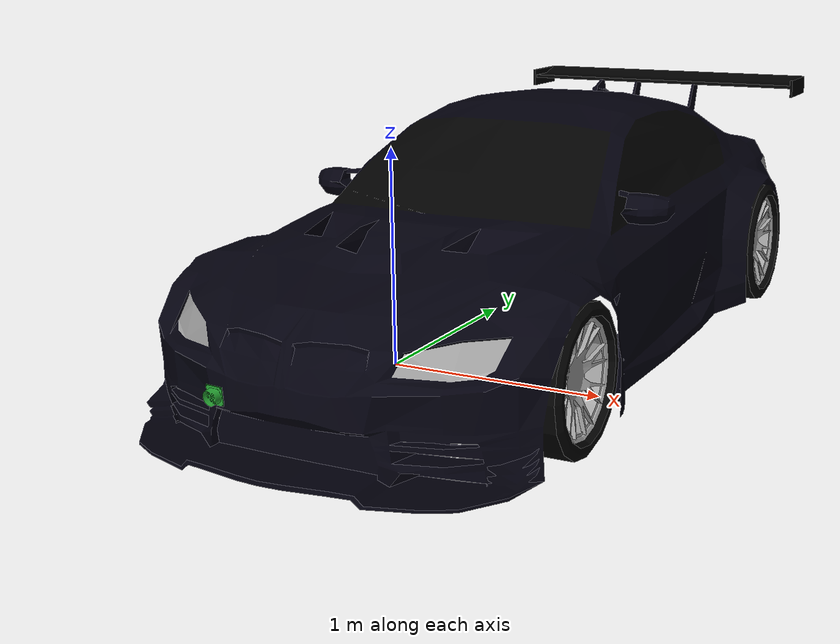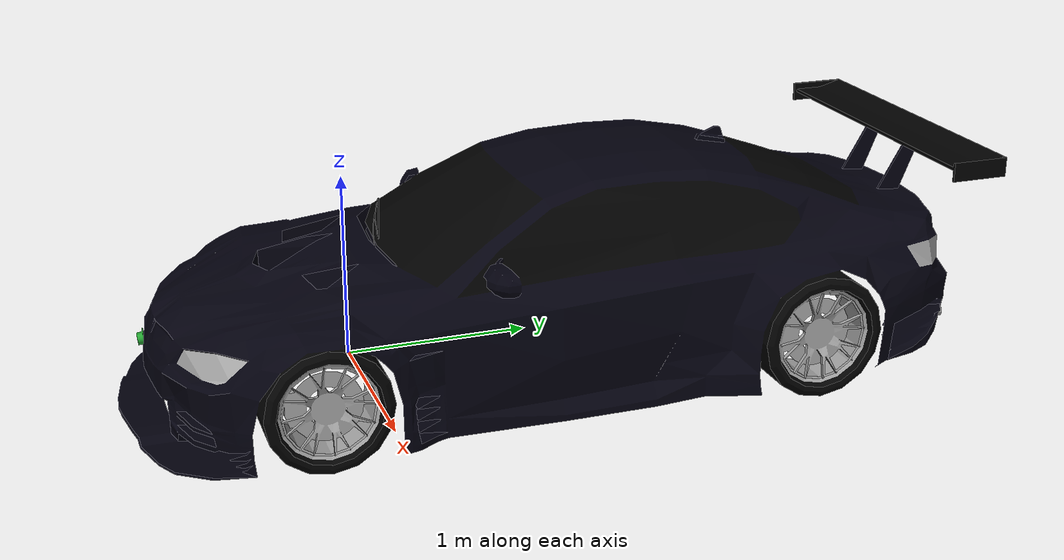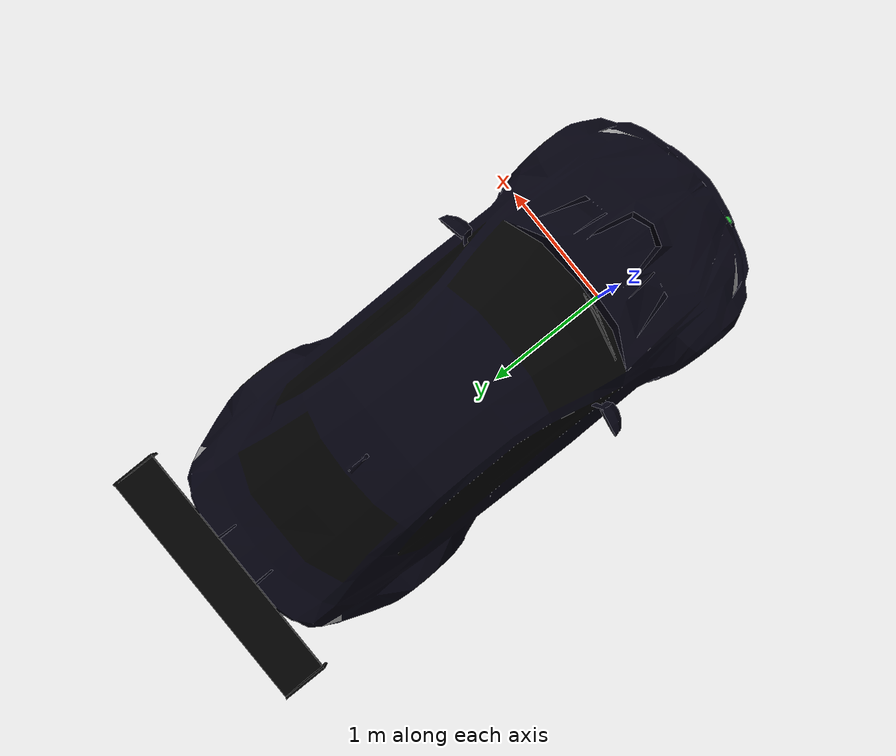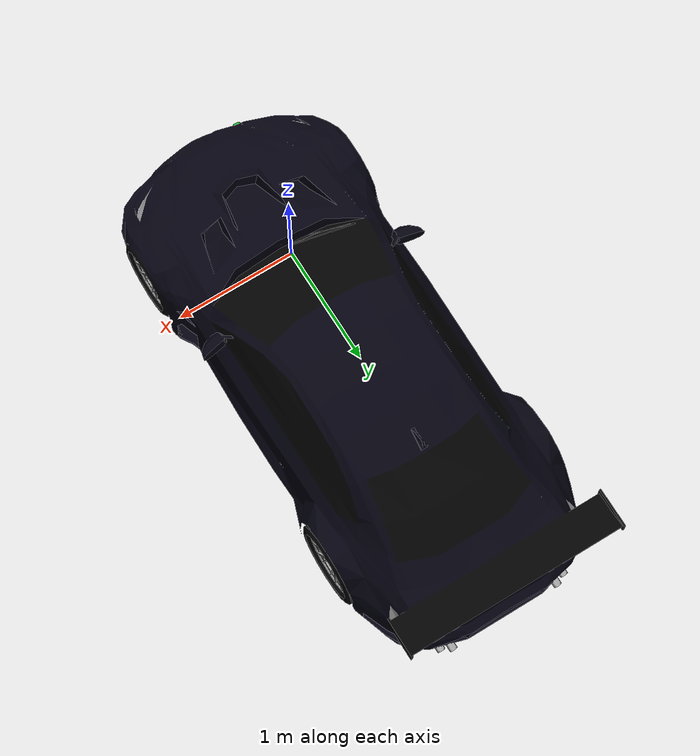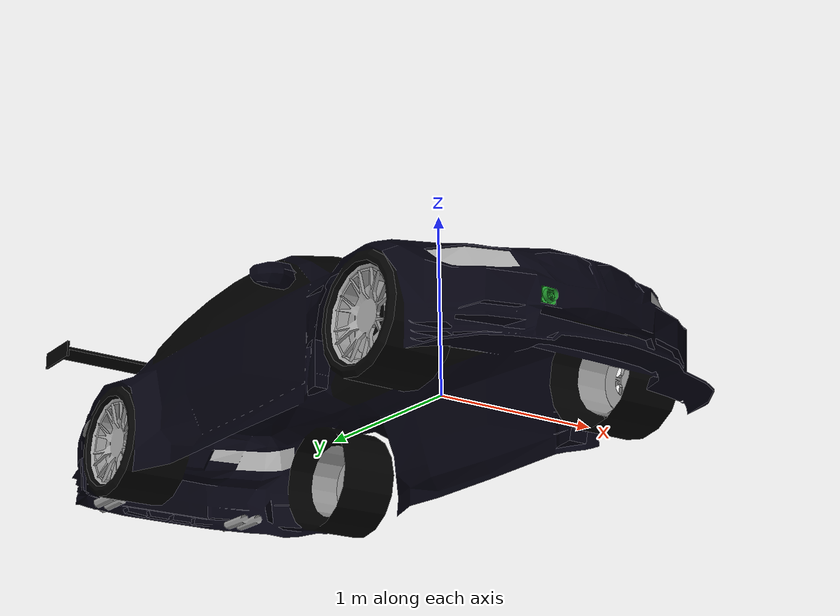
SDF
<?xml version='1.0'?>
<sdf version='1.6'>
  <model name='car4'>
    <link name='link_0'>
      <inertial>
          <mass>1326</mass>
        <pose>0 0 0.5 0 -0 0</pose>
        <inertia>
          <ixx>2581.13354740</ixx>
          <ixy>0.0</ixy>
          <iyy>591.30846112</iyy>
          <ixz>0.0</ixz>
          <iyz>0.0</iyz>
          <izz>2681.95008628</izz>
        </inertia>
      </inertial>
      <pose frame=''>0.162769 1.05541 -0.174965 0 -0 0</pose>
      <visual name='visual'>
        <pose frame=''>0 0 0 0 -0 0</pose>
        <geometry>
          <mesh>
            <uri>model://car4/meshes/car4.dae</uri>
            <scale>1 1 1</scale>
          </mesh>
        </geometry>
        <transparency>0</transparency>
        <cast_shadows>1</cast_shadows>
      </visual>
      <collision name='collision'>
        <laser_retro>0</laser_retro>
        <max_contacts>10</max_contacts>
        <pose frame=''>0 0 0 0 -0 0</pose>
        <geometry>
          <mesh>
            <uri>model://car4/meshes/car4.dae</uri>
            <scale>1 1 1</scale>
          </mesh>
        </geometry>
        <surface>
          <friction>
            <ode>
              <mu>1</mu>
              <mu2>1</mu2>
              <fdir1>0 0 0</fdir1>
              <slip1>0</slip1>
              <slip2>0</slip2>
            </ode>
            <torsional>
              <coefficient>1</coefficient>
              <patch_radius>0</patch_radius>
              <surface_radius>0</surface_radius>
              <use_patch_radius>1</use_patch_radius>
              <ode>
                <slip>0</slip>
              </ode>
            </torsional>
          </friction>
          <bounce>
            <restitution_coefficient>0</restitution_coefficient>
            <threshold>1e+06</threshold>
          </bounce>
          <contact>
            <collide_without_contact>0</collide_without_contact>
            <collide_without_contact_bitmask>1</collide_without_contact_bitmask>
            <collide_bitmask>1</collide_bitmask>
            <ode>
              <soft_cfm>0</soft_cfm>
              <soft_erp>0.2</soft_erp>
              <kp>1e+13</kp>
              <kd>1</kd>
              <max_vel>0.01</max_vel>
              <min_depth>0</min_depth>
            </ode>
            <bullet>
              <split_impulse>1</split_impulse>
              <split_impulse_penetration_threshold>-0.01</split_impulse_penetration_threshold>
              <soft_cfm>0</soft_cfm>
              <soft_erp>0.2</soft_erp>
              <kp>1e+13</kp>
              <kd>1</kd>
            </bullet>
          </contact>
        </surface>
      </collision>
    </link>
    <model name='charge_oncar'>
      <link name='link_2'>
        <inertial>
          <mass>0.3</mass>
          <inertia>
            <ixx>0</ixx>
            <ixy>0</ixy>
            <ixz>0</ixz>
            <iyy>0</iyy>
            <iyz>0</iyz>
            <izz>0</izz>
          </inertia>
          <pose frame=''>0 0 0 0 -0 0</pose>
        </inertial>
        <pose frame=''>0 0 0 0 -0 0</pose>
        <gravity>1</gravity>
        <self_collide>0</self_collide>
        <kinematic>0</kinematic>
        <enable_wind>0</enable_wind>
        <visual name='visual'>
          <pose frame=''>-0.04 -0.04 0 0 -0 0</pose>
          <geometry>
            <mesh>
              <uri>model://charge_oncar/meshes/charge_oncar.dae</uri>
              <scale>1 1 1</scale>
            </mesh>
          </geometry>
          <material>
          <lighting>1</lighting>
          <script>
            <uri>file://media/materials/scripts/gazebo.material</uri>
            <name>Gazebo/Green</name>
          </script>
          <emissive>0 0 0 1</emissive>
        </material>
          <transparency>0</transparency>
          <cast_shadows>1</cast_shadows>
        </visual>
        <collision name='collision'>
          <laser_retro>0</laser_retro>
          <max_contacts>10</max_contacts>
          <pose frame=''>-0.04 -0.04 0 0 -0 0</pose>
          <geometry>
            <mesh>
              <uri>model://charge_oncar/meshes/charge_oncar.dae</uri>
              <scale>1 1 1</scale>
            </mesh>
          </geometry>
          <surface>
            <friction>
              <ode>
                <mu>1</mu>
                <mu2>1</mu2>
                <fdir1>0 0 0</fdir1>
                <slip1>0</slip1>
                <slip2>0</slip2>
              </ode>
              <torsional>
                <coefficient>1</coefficient>
                <patch_radius>0</patch_radius>
                <surface_radius>0</surface_radius>
                <use_patch_radius>1</use_patch_radius>
                <ode>
                  <slip>0</slip>
                </ode>
              </torsional>
            </friction>
            <bounce>
              <restitution_coefficient>0</restitution_coefficient>
              <threshold>1e+06</threshold>
            </bounce>
            <contact>
              <collide_without_contact>0</collide_without_contact>
              <collide_without_contact_bitmask>1</collide_without_contact_bitmask>
              <collide_bitmask>1</collide_bitmask>
              <ode>
                <soft_cfm>0</soft_cfm>
                <soft_erp>0.2</soft_erp>
                <kp>1e+13</kp>
                <kd>1</kd>
                <max_vel>0.01</max_vel>
                <min_depth>0</min_depth>
              </ode>
              <bullet>
                <split_impulse>1</split_impulse>
                <split_impulse_penetration_threshold>-0.01</split_impulse_penetration_threshold>
                <soft_cfm>0</soft_cfm>
                <soft_erp>0.2</soft_erp>
                <kp>1e+13</kp>
                <kd>1</kd>
              </bullet>
            </contact>
          </surface>
        </collision>
      </link>
      <static>0</static>
      <allow_auto_disable>1</allow_auto_disable>
      <pose frame=''>-0.162769 -1.05541 0.174965 1.67588 0.007645 -0.072359</pose>
    </model>
    <joint name='link_0_JOINT_0' type='fixed'>
      <parent>link_0</parent>
      <child>charge_oncar::link_2</child>
      <pose frame=''>0 0 0 0 -0 0</pose>
      <physics>
        <ode>
          <limit>
            <cfm>0</cfm>
            <erp>0.2</erp>
          </limit>
          <suspension>
            <cfm>0</cfm>
            <erp>0.2</erp>
          </suspension>
        </ode>
      </physics>
    </joint>
    <static>0</static>
    <allow_auto_disable>1</allow_auto_disable>
  </model>
</sdf>
